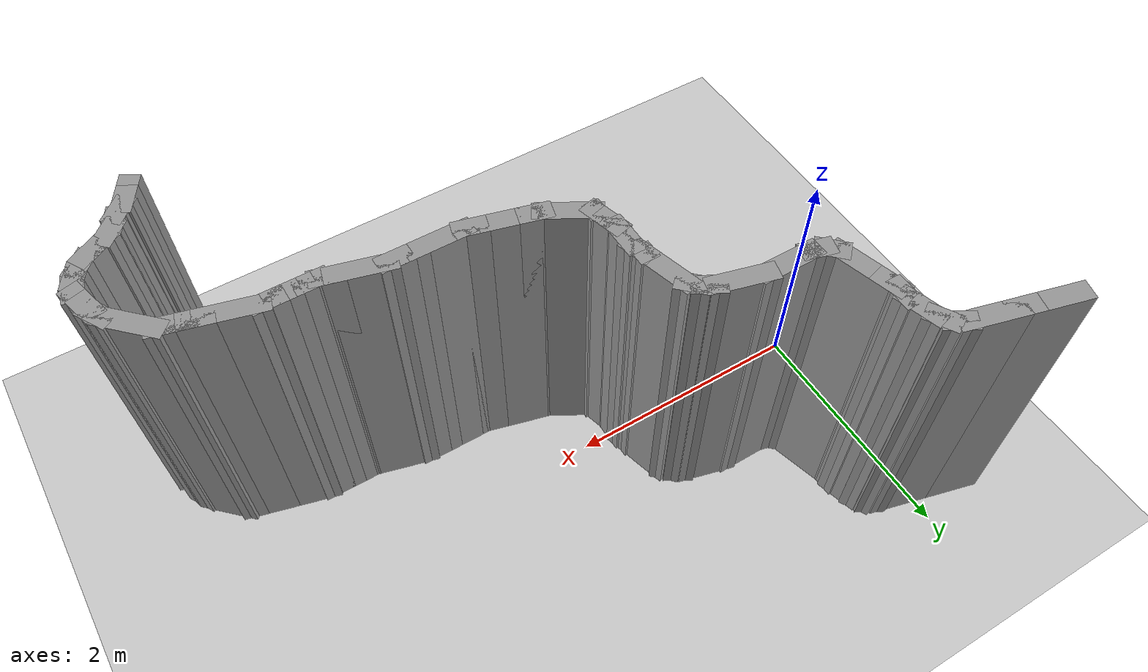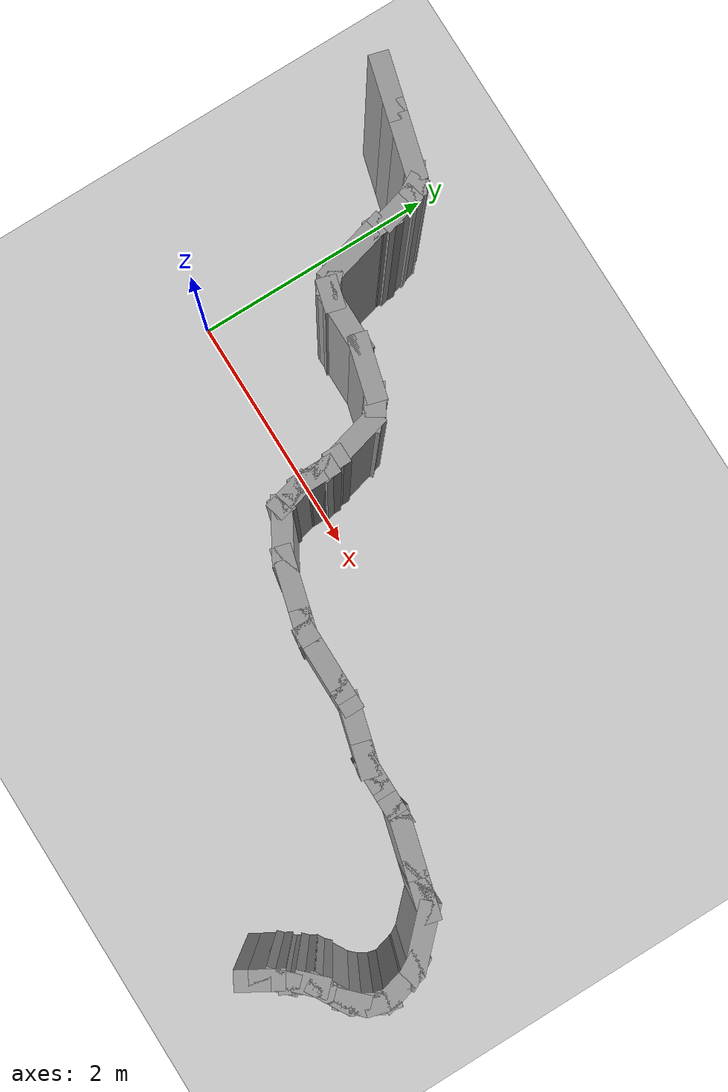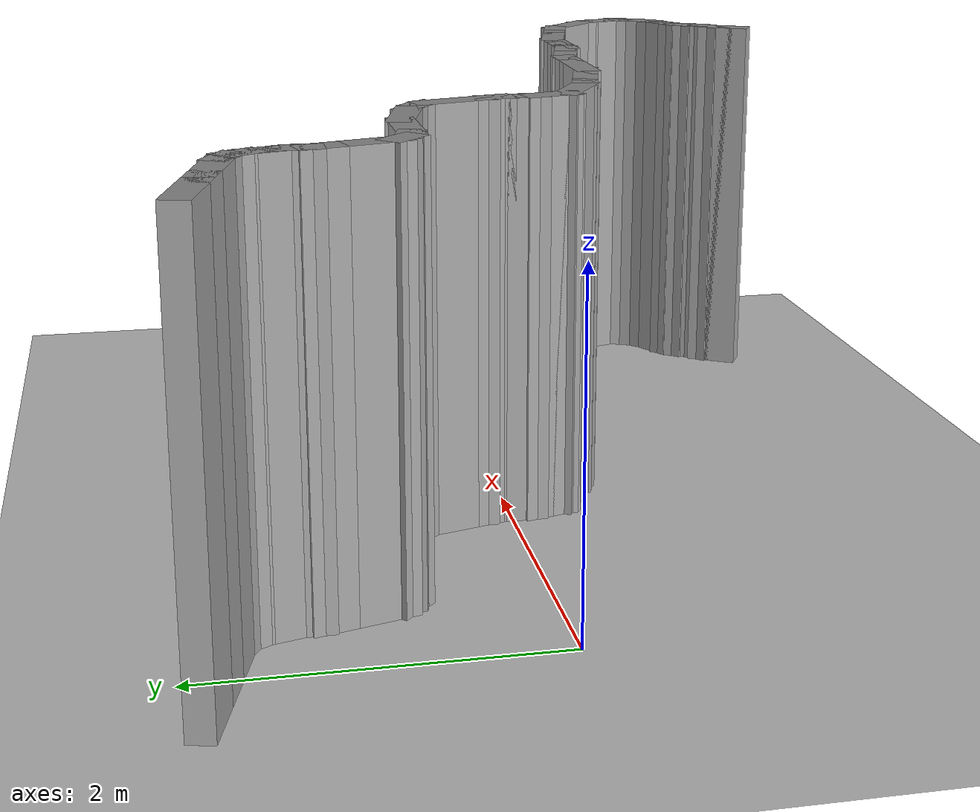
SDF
<sdf version="1.7">
 <world name="default">
  <model name="ground_plane">
   <static>1</static>
   <link name="link">
    <collision name="collision">
     <geometry><plane><normal>0 0 1</normal><size>100 100</size></plane></geometry>
     <surface>
      <contact><collide_bitmask>65535</collide_bitmask></contact>
      <friction><ode><mu>100</mu><mu2>50</mu2></ode></friction>
     </surface>
    </collision>
    <visual name="visual">
     <cast_shadows>0</cast_shadows>
     <geometry><plane><normal>0 0 1</normal><size>100 100</size></plane></geometry>
     <material>
      <script><uri>file://media/materials/scripts/gazebo.material</uri><name>Gazebo/Grey</name></script>
     </material>
    </visual>
   </link>
  </model>
  <model name="pool11">
   <pose>1.69068 -1.09805 0 0 -0 0</pose>
   <link name="Wall_110">
    <collision name="Wall_110_Collision">
     <geometry><box><size>0.25 0.15 2.5</size></box></geometry>
     <pose>0 0 1.25 0 -0 0</pose>
    </collision>
    <visual name="Wall_110_Visual">
     <pose>0 0 1.25 0 -0 0</pose>
     <geometry><box><size>0.25 0.15 2.5</size></box></geometry>
     <material>
      <script><uri>file://media/materials/scripts/gazebo.material</uri><name>Gazebo/Grey</name></script>
      <ambient>1 1 1 1</ambient>
     </material>
     <meta><layer>0</layer></meta>
    </visual>
    <pose>2.68871 -1.06809 0 0 -0 1.0472</pose>
   </link>
   <link name="Wall_111">
    <collision name="Wall_111_Collision">
     <geometry><box><size>0.25 0.15 2.5</size></box></geometry>
     <pose>0 0 1.25 0 -0 0</pose>
    </collision>
    <visual name="Wall_111_Visual">
     <pose>0 0 1.25 0 -0 0</pose>
     <geometry><box><size>0.25 0.15 2.5</size></box></geometry>
     <material>
      <script><uri>file://media/materials/scripts/gazebo.material</uri><name>Gazebo/Grey</name></script>
      <ambient>1 1 1 1</ambient>
     </material>
     <meta><layer>0</layer></meta>
    </visual>
    <pose>2.73871 -0.981487 0 0 -0 1.0472</pose>
   </link>
   <link name="Wall_112">
    <collision name="Wall_112_Collision">
     <geometry><box><size>0.25 0.15 2.5</size></box></geometry>
     <pose>0 0 1.25 0 -0 0</pose>
    </collision>
    <visual name="Wall_112_Visual">
     <pose>0 0 1.25 0 -0 0</pose>
     <geometry><box><size>0.25 0.15 2.5</size></box></geometry>
     <material>
      <script><uri>file://media/materials/scripts/gazebo.material</uri><name>Gazebo/Grey</name></script>
      <ambient>1 1 1 1</ambient>
     </material>
     <meta><layer>0</layer></meta>
    </visual>
    <pose>2.79907 -0.90283 0 0 -0 0.785398</pose>
   </link>
   <link name="Wall_113">
    <collision name="Wall_113_Collision">
     <geometry><box><size>0.25 0.15 2.5</size></box></geometry>
     <pose>0 0 1.25 0 -0 0</pose>
    </collision>
    <visual name="Wall_113_Visual">
     <pose>0 0 1.25 0 -0 0</pose>
     <geometry><box><size>0.25 0.15 2.5</size></box></geometry>
     <material>
      <script><uri>file://media/materials/scripts/gazebo.material</uri><name>Gazebo/Grey</name></script>
      <ambient>1 1 1 1</ambient>
     </material>
     <meta><layer>0</layer></meta>
    </visual>
    <pose>2.85942 -0.824173 0 0 -0 1.0472</pose>
   </link>
   <link name="Wall_114">
    <collision name="Wall_114_Collision">
     <geometry><box><size>0.25 0.15 2.5</size></box></geometry>
     <pose>0 0 1.25 0 -0 0</pose>
    </collision>
    <visual name="Wall_114_Visual">
     <pose>0 0 1.25 0 -0 0</pose>
     <geometry><box><size>0.25 0.15 2.5</size></box></geometry>
     <material>
      <script><uri>file://media/materials/scripts/gazebo.material</uri><name>Gazebo/Grey</name></script>
      <ambient>1 1 1 1</ambient>
     </material>
     <meta><layer>0</layer></meta>
    </visual>
    <pose>2.91978 -0.745517 0 0 -0 0.785398</pose>
   </link>
   <link name="Wall_115">
    <collision name="Wall_115_Collision">
     <geometry><box><size>0.25 0.15 2.5</size></box></geometry>
     <pose>0 0 1.25 0 -0 0</pose>
    </collision>
    <visual name="Wall_115_Visual">
     <pose>0 0 1.25 0 -0 0</pose>
     <geometry><box><size>0.25 0.15 2.5</size></box></geometry>
     <material>
      <script><uri>file://media/materials/scripts/gazebo.material</uri><name>Gazebo/Grey</name></script>
      <ambient>1 1 1 1</ambient>
     </material>
     <meta><layer>0</layer></meta>
    </visual>
    <pose>2.99843 -0.685162 0 0 -0 0.523599</pose>
   </link>
   <link name="Wall_116">
    <collision name="Wall_116_Collision">
     <geometry><box><size>0.25 0.15 2.5</size></box></geometry>
     <pose>0 0 1.25 0 -0 0</pose>
    </collision>
    <visual name="Wall_116_Visual">
     <pose>0 0 1.25 0 -0 0</pose>
     <geometry><box><size>0.25 0.15 2.5</size></box></geometry>
     <material>
      <script><uri>file://media/materials/scripts/gazebo.material</uri><name>Gazebo/Grey</name></script>
      <ambient>1 1 1 1</ambient>
     </material>
     <meta><layer>0</layer></meta>
    </visual>
    <pose>3.08503 -0.635162 0 0 -0 0.523599</pose>
   </link>
   <link name="Wall_117">
    <collision name="Wall_117_Collision">
     <geometry><box><size>0.25 0.15 2.5</size></box></geometry>
     <pose>0 0 1.25 0 -0 0</pose>
    </collision>
    <visual name="Wall_117_Visual">
     <pose>0 0 1.25 0 -0 0</pose>
     <geometry><box><size>0.25 0.15 2.5</size></box></geometry>
     <material>
      <script><uri>file://media/materials/scripts/gazebo.material</uri><name>Gazebo/Grey</name></script>
      <ambient>1 1 1 1</ambient>
     </material>
     <meta><layer>0</layer></meta>
    </visual>
    <pose>3.16369 -0.574806 0 0 -0 0.785398</pose>
   </link>
   <link name="Wall_118">
    <collision name="Wall_118_Collision">
     <geometry><box><size>0.25 0.15 2.5</size></box></geometry>
     <pose>0 0 1.25 0 -0 0</pose>
    </collision>
    <visual name="Wall_118_Visual">
     <pose>0 0 1.25 0 -0 0</pose>
     <geometry><box><size>0.25 0.15 2.5</size></box></geometry>
     <material>
      <script><uri>file://media/materials/scripts/gazebo.material</uri><name>Gazebo/Grey</name></script>
      <ambient>1 1 1 1</ambient>
     </material>
     <meta><layer>0</layer></meta>
    </visual>
    <pose>3.22405 -0.49615 0 0 -0 1.0472</pose>
   </link>
   <link name="Wall_119">
    <collision name="Wall_119_Collision">
     <geometry><box><size>0.25 0.15 2.5</size></box></geometry>
     <pose>0 0 1.25 0 -0 0</pose>
    </collision>
    <visual name="Wall_119_Visual">
     <pose>0 0 1.25 0 -0 0</pose>
     <geometry><box><size>0.25 0.15 2.5</size></box></geometry>
     <material>
      <script><uri>file://media/materials/scripts/gazebo.material</uri><name>Gazebo/Grey</name></script>
      <ambient>1 1 1 1</ambient>
     </material>
     <meta><layer>0</layer></meta>
    </visual>
    <pose>3.26199 -0.404552 0 0 -0 1.309</pose>
   </link>
   <link name="Wall_120">
    <collision name="Wall_120_Collision">
     <geometry><box><size>0.25 0.15 2.5</size></box></geometry>
     <pose>0 0 1.25 0 -0 0</pose>
    </collision>
    <visual name="Wall_120_Visual">
     <pose>0 0 1.25 0 -0 0</pose>
     <geometry><box><size>0.25 0.15 2.5</size></box></geometry>
     <material>
      <script><uri>file://media/materials/scripts/gazebo.material</uri><name>Gazebo/Grey</name></script>
      <ambient>1 1 1 1</ambient>
     </material>
     <meta><layer>0</layer></meta>
    </visual>
    <pose>3.26199 -0.30796 0 0 -0 1.8326</pose>
   </link>
   <link name="Wall_121">
    <collision name="Wall_121_Collision">
     <geometry><box><size>0.25 0.15 2.5</size></box></geometry>
     <pose>0 0 1.25 0 -0 0</pose>
    </collision>
    <visual name="Wall_121_Visual">
     <pose>0 0 1.25 0 -0 0</pose>
     <geometry><box><size>0.25 0.15 2.5</size></box></geometry>
     <material>
      <script><uri>file://media/materials/scripts/gazebo.material</uri><name>Gazebo/Grey</name></script>
      <ambient>1 1 1 1</ambient>
     </material>
     <meta><layer>0</layer></meta>
    </visual>
    <pose>3.23611 -0.211367 0 0 -0 1.8326</pose>
   </link>
   <link name="Wall_122">
    <collision name="Wall_122_Collision">
     <geometry><box><size>0.25 0.15 2.5</size></box></geometry>
     <pose>0 0 1.25 0 -0 0</pose>
    </collision>
    <visual name="Wall_122_Visual">
     <pose>0 0 1.25 0 -0 0</pose>
     <geometry><box><size>0.25 0.15 2.5</size></box></geometry>
     <material>
      <script><uri>file://media/materials/scripts/gazebo.material</uri><name>Gazebo/Grey</name></script>
      <ambient>1 1 1 1</ambient>
     </material>
     <meta><layer>0</layer></meta>
    </visual>
    <pose>3.19816 -0.119769 0 0 -0 2.0944</pose>
   </link>
   <link name="Wall_123">
    <collision name="Wall_123_Collision">
     <geometry><box><size>0.5 0.15 2.5</size></box></geometry>
     <pose>0 0 1.25 0 -0 0</pose>
    </collision>
    <visual name="Wall_123_Visual">
     <pose>0 0 1.25 0 -0 0</pose>
     <geometry><box><size>0.5 0.15 2.5</size></box></geometry>
     <material>
      <script><uri>file://media/materials/scripts/gazebo.material</uri><name>Gazebo/Grey</name></script>
      <ambient>1 1 1 1</ambient>
     </material>
     <meta><layer>0</layer></meta>
    </visual>
    <pose>3.04942 0.047276 0 0 -0 2.35619</pose>
   </link>
   <link name="Wall_124">
    <collision name="Wall_124_Collision">
     <geometry><box><size>0.25 0.15 2.5</size></box></geometry>
     <pose>0 0 1.25 0 -0 0</pose>
    </collision>
    <visual name="Wall_124_Visual">
     <pose>0 0 1.25 0 -0 0</pose>
     <geometry><box><size>0.25 0.15 2.5</size></box></geometry>
     <material>
      <script><uri>file://media/materials/scripts/gazebo.material</uri><name>Gazebo/Grey</name></script>
      <ambient>1 1 1 1</ambient>
     </material>
     <meta><layer>0</layer></meta>
    </visual>
    <pose>2.87738 0.18396 0 0 -0 2.87979</pose>
   </link>
   <link name="Wall_125">
    <collision name="Wall_125_Collision">
     <geometry><box><size>0.25 0.15 2.5</size></box></geometry>
     <pose>0 0 1.25 0 -0 0</pose>
    </collision>
    <visual name="Wall_125_Visual">
     <pose>0 0 1.25 0 -0 0</pose>
     <geometry><box><size>0.25 0.15 2.5</size></box></geometry>
     <material>
      <script><uri>file://media/materials/scripts/gazebo.material</uri><name>Gazebo/Grey</name></script>
      <ambient>1 1 1 1</ambient>
     </material>
     <meta><layer>0</layer></meta>
    </visual>
    <pose>2.78079 0.209842 0 0 -0 2.87979</pose>
   </link>
   <link name="Wall_126">
    <collision name="Wall_126_Collision">
     <geometry><box><size>0.25 0.15 2.5</size></box></geometry>
     <pose>0 0 1.25 0 -0 0</pose>
    </collision>
    <visual name="Wall_126_Visual">
     <pose>0 0 1.25 0 -0 0</pose>
     <geometry><box><size>0.25 0.15 2.5</size></box></geometry>
     <material>
      <script><uri>file://media/materials/scripts/gazebo.material</uri><name>Gazebo/Grey</name></script>
      <ambient>1 1 1 1</ambient>
     </material>
     <meta><layer>0</layer></meta>
    </visual>
    <pose>2.6842 0.235724 0 0 -0 2.87979</pose>
   </link>
   <link name="Wall_127">
    <collision name="Wall_127_Collision">
     <geometry><box><size>0.5 0.15 2.5</size></box></geometry>
     <pose>0 0 1.25 0 -0 0</pose>
    </collision>
    <visual name="Wall_127_Visual">
     <pose>0 0 1.25 0 -0 0</pose>
     <geometry><box><size>0.5 0.15 2.5</size></box></geometry>
     <material>
      <script><uri>file://media/materials/scripts/gazebo.material</uri><name>Gazebo/Grey</name></script>
      <ambient>1 1 1 1</ambient>
     </material>
     <meta><layer>0</layer></meta>
    </visual>
    <pose>2.46686 0.293958 0 0 -0 2.87979</pose>
   </link>
   <link name="Wall_128">
    <collision name="Wall_128_Collision">
     <geometry><box><size>0.25 0.15 2.5</size></box></geometry>
     <pose>0 0 1.25 0 -0 0</pose>
    </collision>
    <visual name="Wall_128_Visual">
     <pose>0 0 1.25 0 -0 0</pose>
     <geometry><box><size>0.25 0.15 2.5</size></box></geometry>
     <material>
      <script><uri>file://media/materials/scripts/gazebo.material</uri><name>Gazebo/Grey</name></script>
      <ambient>1 1 1 1</ambient>
     </material>
     <meta><layer>0</layer></meta>
    </visual>
    <pose>2.24783 0.339252 0 0 -0 3.14159</pose>
   </link>
   <link name="Wall_129">
    <collision name="Wall_129_Collision">
     <geometry><box><size>0.25 0.15 2.5</size></box></geometry>
     <pose>0 0 1.25 0 -0 0</pose>
    </collision>
    <visual name="Wall_129_Visual">
     <pose>0 0 1.25 0 -0 0</pose>
     <geometry><box><size>0.25 0.15 2.5</size></box></geometry>
     <material>
      <script><uri>file://media/materials/scripts/gazebo.material</uri><name>Gazebo/Grey</name></script>
      <ambient>1 1 1 1</ambient>
     </material>
     <meta><layer>0</layer></meta>
    </visual>
    <pose>2.14783 0.339252 0 0 -0 3.14159</pose>
   </link>
   <link name="Wall_130">
    <collision name="Wall_130_Collision">
     <geometry><box><size>0.25 0.15 2.5</size></box></geometry>
     <pose>0 0 1.25 0 -0 0</pose>
    </collision>
    <visual name="Wall_130_Visual">
     <pose>0 0 1.25 0 -0 0</pose>
     <geometry><box><size>0.25 0.15 2.5</size></box></geometry>
     <material>
      <script><uri>file://media/materials/scripts/gazebo.material</uri><name>Gazebo/Grey</name></script>
      <ambient>1 1 1 1</ambient>
     </material>
     <meta><layer>0</layer></meta>
    </visual>
    <pose>2.04783 0.339252 0 0 -0 3.14159</pose>
   </link>
   <link name="Wall_131">
    <collision name="Wall_131_Collision">
     <geometry><box><size>0.25 0.15 2.5</size></box></geometry>
     <pose>0 0 1.25 0 -0 0</pose>
    </collision>
    <visual name="Wall_131_Visual">
     <pose>0 0 1.25 0 -0 0</pose>
     <geometry><box><size>0.25 0.15 2.5</size></box></geometry>
     <material>
      <script><uri>file://media/materials/scripts/gazebo.material</uri><name>Gazebo/Grey</name></script>
      <ambient>1 1 1 1</ambient>
     </material>
     <meta><layer>0</layer></meta>
    </visual>
    <pose>1.94783 0.339252 0 0 -0 3.14159</pose>
   </link>
   <link name="Wall_132">
    <collision name="Wall_132_Collision">
     <geometry><box><size>0.25 0.15 2.5</size></box></geometry>
     <pose>0 0 1.25 0 -0 0</pose>
    </collision>
    <visual name="Wall_132_Visual">
     <pose>0 0 1.25 0 -0 0</pose>
     <geometry><box><size>0.25 0.15 2.5</size></box></geometry>
     <material>
      <script><uri>file://media/materials/scripts/gazebo.material</uri><name>Gazebo/Grey</name></script>
      <ambient>1 1 1 1</ambient>
     </material>
     <meta><layer>0</layer></meta>
    </visual>
    <pose>1.84953 0.352193 0 0 -0 2.87979</pose>
   </link>
   <link name="Wall_133">
    <collision name="Wall_133_Collision">
     <geometry><box><size>0.5 0.15 2.5</size></box></geometry>
     <pose>0 0 1.25 0 -0 0</pose>
    </collision>
    <visual name="Wall_133_Visual">
     <pose>0 0 1.25 0 -0 0</pose>
     <geometry><box><size>0.5 0.15 2.5</size></box></geometry>
     <material>
      <script><uri>file://media/materials/scripts/gazebo.material</uri><name>Gazebo/Grey</name></script>
      <ambient>1 1 1 1</ambient>
     </material>
     <meta><layer>0</layer></meta>
    </visual>
    <pose>1.6322 0.410427 0 0 -0 2.87979</pose>
   </link>
   <link name="Wall_134">
    <collision name="Wall_134_Collision">
     <geometry><box><size>0.25 0.15 2.5</size></box></geometry>
     <pose>0 0 1.25 0 -0 0</pose>
    </collision>
    <visual name="Wall_134_Visual">
     <pose>0 0 1.25 0 -0 0</pose>
     <geometry><box><size>0.25 0.15 2.5</size></box></geometry>
     <material>
      <script><uri>file://media/materials/scripts/gazebo.material</uri><name>Gazebo/Grey</name></script>
      <ambient>1 1 1 1</ambient>
     </material>
     <meta><layer>0</layer></meta>
    </visual>
    <pose>1.41316 0.45572 0 0 -0 3.14159</pose>
   </link>
   <link name="Wall_135">
    <collision name="Wall_135_Collision">
     <geometry><box><size>0.25 0.15 2.5</size></box></geometry>
     <pose>0 0 1.25 0 -0 0</pose>
    </collision>
    <visual name="Wall_135_Visual">
     <pose>0 0 1.25 0 -0 0</pose>
     <geometry><box><size>0.25 0.15 2.5</size></box></geometry>
     <material>
      <script><uri>file://media/materials/scripts/gazebo.material</uri><name>Gazebo/Grey</name></script>
      <ambient>1 1 1 1</ambient>
     </material>
     <meta><layer>0</layer></meta>
    </visual>
    <pose>1.31316 0.45572 0 0 -0 3.14159</pose>
   </link>
   <link name="Wall_136">
    <collision name="Wall_136_Collision">
     <geometry><box><size>0.5 0.15 2.5</size></box></geometry>
     <pose>0 0 1.25 0 -0 0</pose>
    </collision>
    <visual name="Wall_136_Visual">
     <pose>0 0 1.25 0 -0 0</pose>
     <geometry><box><size>0.5 0.15 2.5</size></box></geometry>
     <material>
      <script><uri>file://media/materials/scripts/gazebo.material</uri><name>Gazebo/Grey</name></script>
      <ambient>1 1 1 1</ambient>
     </material>
     <meta><layer>0</layer></meta>
    </visual>
    <pose>1.08816 0.45572 0 0 -0 3.14159</pose>
   </link>
   <link name="Wall_137">
    <collision name="Wall_137_Collision">
     <geometry><box><size>0.15 0.15 2.5</size></box></geometry>
     <pose>0 0 1.25 0 -0 0</pose>
    </collision>
    <visual name="Wall_137_Visual">
     <pose>0 0 1.25 0 -0 0</pose>
     <geometry><box><size>0.15 0.15 2.5</size></box></geometry>
     <material>
      <script><uri>file://media/materials/scripts/gazebo.material</uri><name>Gazebo/Grey</name></script>
      <ambient>1 1 1 1</ambient>
     </material>
     <meta><layer>0</layer></meta>
    </visual>
    <pose>0.913159 0.45572 0 0 -0 0</pose>
   </link>
   <link name="Wall_138">
    <collision name="Wall_138_Collision">
     <geometry><box><size>0.25 0.15 2.5</size></box></geometry>
     <pose>0 0 1.25 0 -0 0</pose>
    </collision>
    <visual name="Wall_138_Visual">
     <pose>0 0 1.25 0 -0 0</pose>
     <geometry><box><size>0.25 0.15 2.5</size></box></geometry>
     <material>
      <script><uri>file://media/materials/scripts/gazebo.material</uri><name>Gazebo/Grey</name></script>
      <ambient>1 1 1 1</ambient>
     </material>
     <meta><layer>0</layer></meta>
    </visual>
    <pose>0.864863 0.468661 0 0 -0 2.87979</pose>
   </link>
   <link name="Wall_139">
    <collision name="Wall_139_Collision">
     <geometry><box><size>0.5 0.15 2.5</size></box></geometry>
     <pose>0 0 1.25 0 -0 0</pose>
    </collision>
    <visual name="Wall_139_Visual">
     <pose>0 0 1.25 0 -0 0</pose>
     <geometry><box><size>0.5 0.15 2.5</size></box></geometry>
     <material>
      <script><uri>file://media/materials/scripts/gazebo.material</uri><name>Gazebo/Grey</name></script>
      <ambient>1 1 1 1</ambient>
     </material>
     <meta><layer>0</layer></meta>
    </visual>
    <pose>0.647529 0.526895 0 0 -0 2.87979</pose>
   </link>
   <link name="Wall_140">
    <collision name="Wall_140_Collision">
     <geometry><box><size>0.25 0.15 2.5</size></box></geometry>
     <pose>0 0 1.25 0 -0 0</pose>
    </collision>
    <visual name="Wall_140_Visual">
     <pose>0 0 1.25 0 -0 0</pose>
     <geometry><box><size>0.25 0.15 2.5</size></box></geometry>
     <material>
      <script><uri>file://media/materials/scripts/gazebo.material</uri><name>Gazebo/Grey</name></script>
      <ambient>1 1 1 1</ambient>
     </material>
     <meta><layer>0</layer></meta>
    </visual>
    <pose>0.430196 0.58513 0 0 -0 2.87979</pose>
   </link>
   <link name="Wall_141">
    <collision name="Wall_141_Collision">
     <geometry><box><size>0.5 0.15 2.5</size></box></geometry>
     <pose>0 0 1.25 0 -0 0</pose>
    </collision>
    <visual name="Wall_141_Visual">
     <pose>0 0 1.25 0 -0 0</pose>
     <geometry><box><size>0.5 0.15 2.5</size></box></geometry>
     <material>
      <script><uri>file://media/materials/scripts/gazebo.material</uri><name>Gazebo/Grey</name></script>
      <ambient>1 1 1 1</ambient>
     </material>
     <meta><layer>0</layer></meta>
    </visual>
    <pose>0.230345 0.685571 0 0 -0 2.61799</pose>
   </link>
   <link name="Wall_142">
    <collision name="Wall_142_Collision">
     <geometry><box><size>0.15 0.15 2.5</size></box></geometry>
     <pose>0 0 1.25 0 -0 0</pose>
    </collision>
    <visual name="Wall_142_Visual">
     <pose>0 0 1.25 0 -0 0</pose>
     <geometry><box><size>0.15 0.15 2.5</size></box></geometry>
     <material>
      <script><uri>file://media/materials/scripts/gazebo.material</uri><name>Gazebo/Grey</name></script>
      <ambient>1 1 1 1</ambient>
     </material>
     <meta><layer>0</layer></meta>
    </visual>
    <pose>0.078791 0.773071 0 0 -0 0</pose>
   </link>
   <link name="Wall_143">
    <collision name="Wall_143_Collision">
     <geometry><box><size>0.25 0.15 2.5</size></box></geometry>
     <pose>0 0 1.25 0 -0 0</pose>
    </collision>
    <visual name="Wall_143_Visual">
     <pose>0 0 1.25 0 -0 0</pose>
     <geometry><box><size>0.25 0.15 2.5</size></box></geometry>
     <material>
      <script><uri>file://media/materials/scripts/gazebo.material</uri><name>Gazebo/Grey</name></script>
      <ambient>1 1 1 1</ambient>
     </material>
     <meta><layer>0</layer></meta>
    </visual>
    <pose>0.06585 0.821367 0 0 -0 1.8326</pose>
   </link>
   <link name="Wall_144">
    <collision name="Wall_144_Collision">
     <geometry><box><size>0.25 0.15 2.5</size></box></geometry>
     <pose>0 0 1.25 0 -0 0</pose>
    </collision>
    <visual name="Wall_144_Visual">
     <pose>0 0 1.25 0 -0 0</pose>
     <geometry><box><size>0.25 0.15 2.5</size></box></geometry>
     <material>
      <script><uri>file://media/materials/scripts/gazebo.material</uri><name>Gazebo/Grey</name></script>
      <ambient>1 1 1 1</ambient>
     </material>
     <meta><layer>0</layer></meta>
    </visual>
    <pose>0.039968 0.917959 0 0 -0 1.8326</pose>
   </link>
   <link name="Wall_145">
    <collision name="Wall_145_Collision">
     <geometry><box><size>0.25 0.15 2.5</size></box></geometry>
     <pose>0 0 1.25 0 -0 0</pose>
    </collision>
    <visual name="Wall_145_Visual">
     <pose>0 0 1.25 0 -0 0</pose>
     <geometry><box><size>0.25 0.15 2.5</size></box></geometry>
     <material>
      <script><uri>file://media/materials/scripts/gazebo.material</uri><name>Gazebo/Grey</name></script>
      <ambient>1 1 1 1</ambient>
     </material>
     <meta><layer>0</layer></meta>
    </visual>
    <pose>0.027027 1.01626 0 0 -0 1.5708</pose>
   </link>
   <link name="Wall_146">
    <collision name="Wall_146_Collision">
     <geometry><box><size>0.25 0.15 2.5</size></box></geometry>
     <pose>0 0 1.25 0 -0 0</pose>
    </collision>
    <visual name="Wall_146_Visual">
     <pose>0 0 1.25 0 -0 0</pose>
     <geometry><box><size>0.25 0.15 2.5</size></box></geometry>
     <material>
      <script><uri>file://media/materials/scripts/gazebo.material</uri><name>Gazebo/Grey</name></script>
      <ambient>1 1 1 1</ambient>
     </material>
     <meta><layer>0</layer></meta>
    </visual>
    <pose>0.027027 1.11626 0 0 -0 1.5708</pose>
   </link>
   <link name="Wall_147">
    <collision name="Wall_147_Collision">
     <geometry><box><size>0.15 0.15 2.5</size></box></geometry>
     <pose>0 0 1.25 0 -0 0</pose>
    </collision>
    <visual name="Wall_147_Visual">
     <pose>0 0 1.25 0 -0 0</pose>
     <geometry><box><size>0.15 0.15 2.5</size></box></geometry>
     <material>
      <script><uri>file://media/materials/scripts/gazebo.material</uri><name>Gazebo/Grey</name></script>
      <ambient>1 1 1 1</ambient>
     </material>
     <meta><layer>0</layer></meta>
    </visual>
    <pose>0.027027 1.16626 0 0 -0 0</pose>
   </link>
   <link name="Wall_148">
    <collision name="Wall_148_Collision">
     <geometry><box><size>0.25 0.15 2.5</size></box></geometry>
     <pose>0 0 1.25 0 -0 0</pose>
    </collision>
    <visual name="Wall_148_Visual">
     <pose>0 0 1.25 0 -0 0</pose>
     <geometry><box><size>0.25 0.15 2.5</size></box></geometry>
     <material>
      <script><uri>file://media/materials/scripts/gazebo.material</uri><name>Gazebo/Grey</name></script>
      <ambient>1 1 1 1</ambient>
     </material>
     <meta><layer>0</layer></meta>
    </visual>
    <pose>0.014086 1.21455 0 0 -0 1.8326</pose>
   </link>
   <link name="Wall_149">
    <collision name="Wall_149_Collision">
     <geometry><box><size>0.15 0.15 2.5</size></box></geometry>
     <pose>0 0 1.25 0 -0 0</pose>
    </collision>
    <visual name="Wall_149_Visual">
     <pose>0 0 1.25 0 -0 0</pose>
     <geometry><box><size>0.15 0.15 2.5</size></box></geometry>
     <material>
      <script><uri>file://media/materials/scripts/gazebo.material</uri><name>Gazebo/Grey</name></script>
      <ambient>1 1 1 1</ambient>
     </material>
     <meta><layer>0</layer></meta>
    </visual>
    <pose>0.001145 1.26285 0 0 -0 0</pose>
   </link>
   <link name="Wall_150">
    <collision name="Wall_150_Collision">
     <geometry><box><size>0.5 0.15 2.5</size></box></geometry>
     <pose>0 0 1.25 0 -0 0</pose>
    </collision>
    <visual name="Wall_150_Visual">
     <pose>0 0 1.25 0 -0 0</pose>
     <geometry><box><size>0.5 0.15 2.5</size></box></geometry>
     <material>
      <script><uri>file://media/materials/scripts/gazebo.material</uri><name>Gazebo/Grey</name></script>
      <ambient>1 1 1 1</ambient>
     </material>
     <meta><layer>0</layer></meta>
    </visual>
    <pose>-0.044148 1.43189 0 0 -0 1.8326</pose>
   </link>
   <link name="Wall_151">
    <collision name="Wall_151_Collision">
     <geometry><box><size>0.25 0.15 2.5</size></box></geometry>
     <pose>0 0 1.25 0 -0 0</pose>
    </collision>
    <visual name="Wall_151_Visual">
     <pose>0 0 1.25 0 -0 0</pose>
     <geometry><box><size>0.25 0.15 2.5</size></box></geometry>
     <material>
      <script><uri>file://media/materials/scripts/gazebo.material</uri><name>Gazebo/Grey</name></script>
      <ambient>1 1 1 1</ambient>
     </material>
     <meta><layer>0</layer></meta>
    </visual>
    <pose>-0.124797 1.63628 0 0 -0 2.35619</pose>
   </link>
   <link name="Wall_152">
    <collision name="Wall_152_Collision">
     <geometry><box><size>0.25 0.15 2.5</size></box></geometry>
     <pose>0 0 1.25 0 -0 0</pose>
    </collision>
    <visual name="Wall_152_Visual">
     <pose>0 0 1.25 0 -0 0</pose>
     <geometry><box><size>0.25 0.15 2.5</size></box></geometry>
     <material>
      <script><uri>file://media/materials/scripts/gazebo.material</uri><name>Gazebo/Grey</name></script>
      <ambient>1 1 1 1</ambient>
     </material>
     <meta><layer>0</layer></meta>
    </visual>
    <pose>-0.203453 1.69663 0 0 -0 2.61799</pose>
   </link>
   <link name="Wall_153">
    <collision name="Wall_153_Collision">
     <geometry><box><size>0.5 0.15 2.5</size></box></geometry>
     <pose>0 0 1.25 0 -0 0</pose>
    </collision>
    <visual name="Wall_153_Visual">
     <pose>0 0 1.25 0 -0 0</pose>
     <geometry><box><size>0.5 0.15 2.5</size></box></geometry>
     <material>
      <script><uri>file://media/materials/scripts/gazebo.material</uri><name>Gazebo/Grey</name></script>
      <ambient>1 1 1 1</ambient>
     </material>
     <meta><layer>0</layer></meta>
    </visual>
    <pose>-0.415792 1.76693 0 0 -0 2.87979</pose>
   </link>
   <link name="Wall_154">
    <collision name="Wall_154_Collision">
     <geometry><box><size>0.5 0.15 2.5</size></box></geometry>
     <pose>0 0 1.25 0 -0 0</pose>
    </collision>
    <visual name="Wall_154_Visual">
     <pose>0 0 1.25 0 -0 0</pose>
     <geometry><box><size>0.5 0.15 2.5</size></box></geometry>
     <material>
      <script><uri>file://media/materials/scripts/gazebo.material</uri><name>Gazebo/Grey</name></script>
      <ambient>1 1 1 1</ambient>
     </material>
     <meta><layer>0</layer></meta>
    </visual>
    <pose>-0.759829 1.81222 0 0 -0 3.14159</pose>
   </link>
   <link name="Wall_155">
    <collision name="Wall_155_Collision">
     <geometry><box><size>0.25 0.15 2.5</size></box></geometry>
     <pose>0 0 1.25 0 -0 0</pose>
    </collision>
    <visual name="Wall_155_Visual">
     <pose>0 0 1.25 0 -0 0</pose>
     <geometry><box><size>0.25 0.15 2.5</size></box></geometry>
     <material>
      <script><uri>file://media/materials/scripts/gazebo.material</uri><name>Gazebo/Grey</name></script>
      <ambient>1 1 1 1</ambient>
     </material>
     <meta><layer>0</layer></meta>
    </visual>
    <pose>-0.983125 1.82516 0 0 -0 2.87979</pose>
   </link>
   <link name="Wall_156">
    <collision name="Wall_156_Collision">
     <geometry><box><size>0.25 0.15 2.5</size></box></geometry>
     <pose>0 0 1.25 0 -0 0</pose>
    </collision>
    <visual name="Wall_156_Visual">
     <pose>0 0 1.25 0 -0 0</pose>
     <geometry><box><size>0.25 0.15 2.5</size></box></geometry>
     <material>
      <script><uri>file://media/materials/scripts/gazebo.material</uri><name>Gazebo/Grey</name></script>
      <ambient>1 1 1 1</ambient>
     </material>
     <meta><layer>0</layer></meta>
    </visual>
    <pose>-1.06678 1.87346 0 0 -0 2.35619</pose>
   </link>
   <link name="Wall_157">
    <collision name="Wall_157_Collision">
     <geometry><box><size>0.5 0.15 2.5</size></box></geometry>
     <pose>0 0 1.25 0 -0 0</pose>
    </collision>
    <visual name="Wall_157_Visual">
     <pose>0 0 1.25 0 -0 0</pose>
     <geometry><box><size>0.5 0.15 2.5</size></box></geometry>
     <material>
      <script><uri>file://media/materials/scripts/gazebo.material</uri><name>Gazebo/Grey</name></script>
      <ambient>1 1 1 1</ambient>
     </material>
     <meta><layer>0</layer></meta>
    </visual>
    <pose>-1.14742 2.07785 0 0 -0 1.8326</pose>
   </link>
   <link name="Wall_158">
    <collision name="Wall_158_Collision">
     <geometry><box><size>0.25 0.15 2.5</size></box></geometry>
     <pose>0 0 1.25 0 -0 0</pose>
    </collision>
    <visual name="Wall_158_Visual">
     <pose>0 0 1.25 0 -0 0</pose>
     <geometry><box><size>0.25 0.15 2.5</size></box></geometry>
     <material>
      <script><uri>file://media/materials/scripts/gazebo.material</uri><name>Gazebo/Grey</name></script>
      <ambient>1 1 1 1</ambient>
     </material>
     <meta><layer>0</layer></meta>
    </visual>
    <pose>-1.20566 2.29518 0 0 -0 1.8326</pose>
   </link>
   <link name="Wall_159">
    <collision name="Wall_159_Collision">
     <geometry><box><size>0.25 0.15 2.5</size></box></geometry>
     <pose>0 0 1.25 0 -0 0</pose>
    </collision>
    <visual name="Wall_159_Visual">
     <pose>0 0 1.25 0 -0 0</pose>
     <geometry><box><size>0.25 0.15 2.5</size></box></geometry>
     <material>
      <script><uri>file://media/materials/scripts/gazebo.material</uri><name>Gazebo/Grey</name></script>
      <ambient>1 1 1 1</ambient>
     </material>
     <meta><layer>0</layer></meta>
    </visual>
    <pose>-1.2186 2.39348 0 0 -0 1.5708</pose>
   </link>
   <link name="Wall_160">
    <collision name="Wall_160_Collision">
     <geometry><box><size>0.25 0.15 2.5</size></box></geometry>
     <pose>0 0 1.25 0 -0 0</pose>
    </collision>
    <visual name="Wall_160_Visual">
     <pose>0 0 1.25 0 -0 0</pose>
     <geometry><box><size>0.25 0.15 2.5</size></box></geometry>
     <material>
      <script><uri>file://media/materials/scripts/gazebo.material</uri><name>Gazebo/Grey</name></script>
      <ambient>1 1 1 1</ambient>
     </material>
     <meta><layer>0</layer></meta>
    </visual>
    <pose>-1.23154 2.49178 0 0 -0 1.8326</pose>
   </link>
   <link name="Wall_161">
    <collision name="Wall_161_Collision">
     <geometry><box><size>0.25 0.15 2.5</size></box></geometry>
     <pose>0 0 1.25 0 -0 0</pose>
    </collision>
    <visual name="Wall_161_Visual">
     <pose>0 0 1.25 0 -0 0</pose>
     <geometry><box><size>0.25 0.15 2.5</size></box></geometry>
     <material>
      <script><uri>file://media/materials/scripts/gazebo.material</uri><name>Gazebo/Grey</name></script>
      <ambient>1 1 1 1</ambient>
     </material>
     <meta><layer>0</layer></meta>
    </visual>
    <pose>-1.25742 2.58837 0 0 -0 1.8326</pose>
   </link>
   <link name="Wall_162">
    <collision name="Wall_162_Collision">
     <geometry><box><size>0.25 0.15 2.5</size></box></geometry>
     <pose>0 0 1.25 0 -0 0</pose>
    </collision>
    <visual name="Wall_162_Visual">
     <pose>0 0 1.25 0 -0 0</pose>
     <geometry><box><size>0.25 0.15 2.5</size></box></geometry>
     <material>
      <script><uri>file://media/materials/scripts/gazebo.material</uri><name>Gazebo/Grey</name></script>
      <ambient>1 1 1 1</ambient>
     </material>
     <meta><layer>0</layer></meta>
    </visual>
    <pose>-1.29536 2.67997 0 0 -0 2.0944</pose>
   </link>
   <link name="Wall_163">
    <collision name="Wall_163_Collision">
     <geometry><box><size>0.25 0.15 2.5</size></box></geometry>
     <pose>0 0 1.25 0 -0 0</pose>
    </collision>
    <visual name="Wall_163_Visual">
     <pose>0 0 1.25 0 -0 0</pose>
     <geometry><box><size>0.25 0.15 2.5</size></box></geometry>
     <material>
      <script><uri>file://media/materials/scripts/gazebo.material</uri><name>Gazebo/Grey</name></script>
      <ambient>1 1 1 1</ambient>
     </material>
     <meta><layer>0</layer></meta>
    </visual>
    <pose>-1.36367 2.74827 0 0 -0 2.61799</pose>
   </link>
   <link name="Wall_164">
    <collision name="Wall_164_Collision">
     <geometry><box><size>0.5 0.15 2.5</size></box></geometry>
     <pose>0 0 1.25 0 -0 0</pose>
    </collision>
    <visual name="Wall_164_Visual">
     <pose>0 0 1.25 0 -0 0</pose>
     <geometry><box><size>0.5 0.15 2.5</size></box></geometry>
     <material>
      <script><uri>file://media/materials/scripts/gazebo.material</uri><name>Gazebo/Grey</name></script>
      <ambient>1 1 1 1</ambient>
     </material>
     <meta><layer>0</layer></meta>
    </visual>
    <pose>-1.576 2.81856 0 0 -0 2.87979</pose>
   </link>
   <link name="Wall_165">
    <collision name="Wall_165_Collision">
     <geometry><box><size>0.25 0.15 2.5</size></box></geometry>
     <pose>0 0 1.25 0 -0 0</pose>
    </collision>
    <visual name="Wall_165_Visual">
     <pose>0 0 1.25 0 -0 0</pose>
     <geometry><box><size>0.25 0.15 2.5</size></box></geometry>
     <material>
      <script><uri>file://media/materials/scripts/gazebo.material</uri><name>Gazebo/Grey</name></script>
      <ambient>1 1 1 1</ambient>
     </material>
     <meta><layer>0</layer></meta>
    </visual>
    <pose>-1.79334 2.87679 0 0 -0 2.87979</pose>
   </link>
   <link name="Wall_166">
    <collision name="Wall_166_Collision">
     <geometry><box><size>0.5 0.15 2.5</size></box></geometry>
     <pose>0 0 1.25 0 -0 0</pose>
    </collision>
    <visual name="Wall_166_Visual">
     <pose>0 0 1.25 0 -0 0</pose>
     <geometry><box><size>0.5 0.15 2.5</size></box></geometry>
     <material>
      <script><uri>file://media/materials/scripts/gazebo.material</uri><name>Gazebo/Grey</name></script>
      <ambient>1 1 1 1</ambient>
     </material>
     <meta><layer>0</layer></meta>
    </visual>
    <pose>-2.01067 2.93503 0 0 -0 2.87979</pose>
   </link>
   <static>1</static>
  </model>
 </world>
</sdf>
